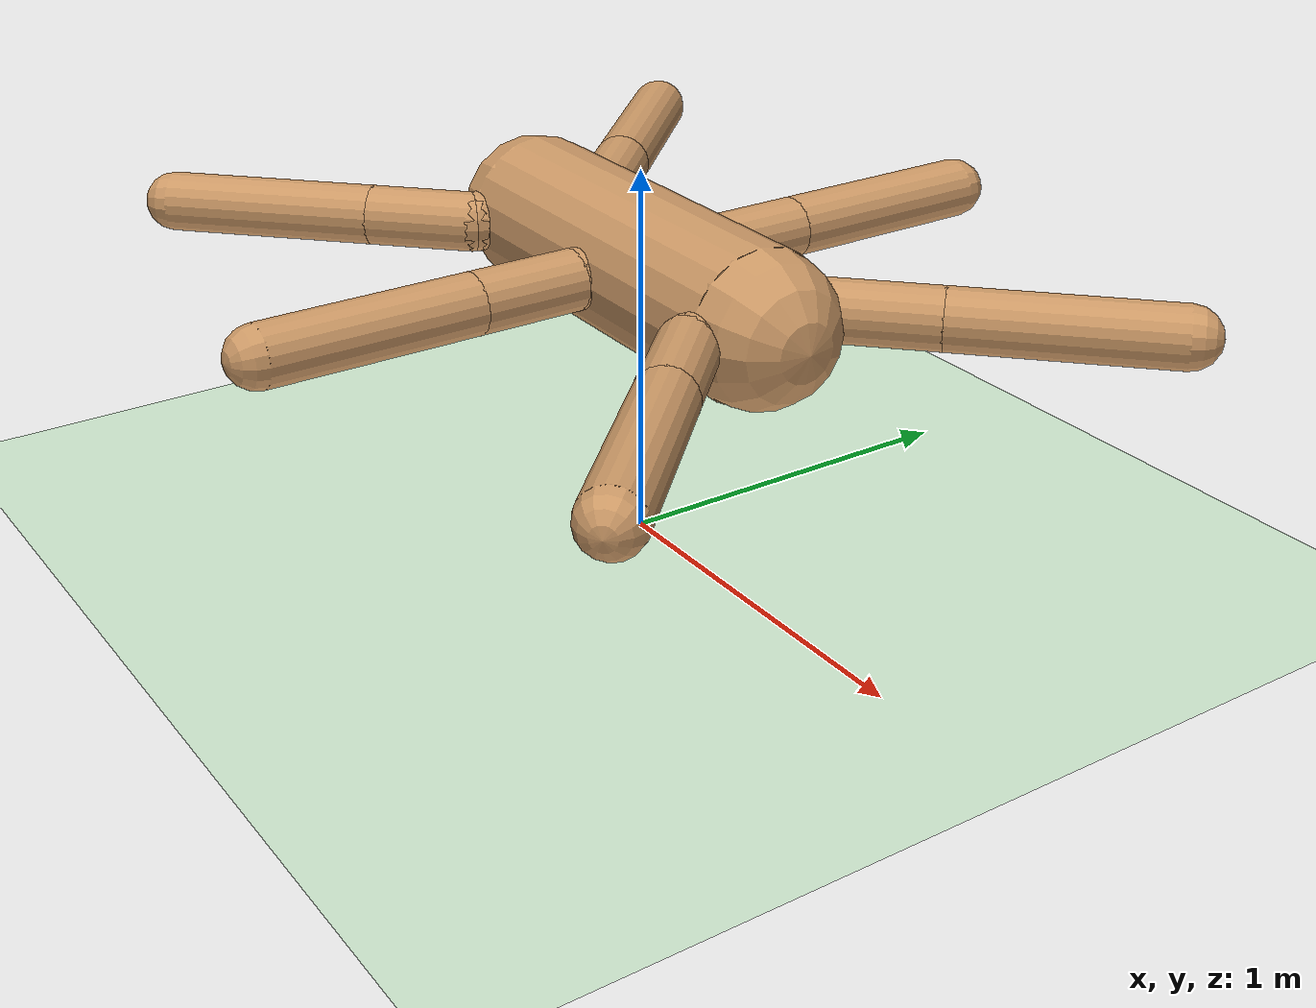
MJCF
<mujoco model="ant">
  <compiler angle="degree" coordinate="local" inertiafromgeom="true" />
  <option integrator="RK4" timestep="0.01" />
  <custom>
    <numeric data="0.0 0.0 0.55 1.0 0.0 0.0 0.0 0.0 1.0 0.0 -1.0 0.0 -1.0 0.0 1.0 1.0 0.0 0.0 0.0 0.0 1.0" name="init_qpos" />
  </custom>
  <default>
    <joint armature="1" damping="1" limited="true" />
    <geom conaffinity="0" condim="3" density="10.0" friction="1 0.5 0.5" margin="0.01" rgba="0.8 0.6 0.4 1" />
  </default>
  <asset>
    <texture builtin="gradient" height="100" rgb1="1 1 1" rgb2="0 0 0" type="skybox" width="100" />
    <texture builtin="flat" height="1278" mark="cross" markrgb="1 1 1" name="texgeom" random="0.01" rgb1="0.8 0.6 0.4" rgb2="0.8 0.6 0.4" type="cube" width="127" />
    <texture builtin="checker" height="100" name="texplane" rgb1="0 0 0" rgb2="0.8 0.8 0.8" type="2d" width="100" />
    <material name="MatPlane" reflectance="0.5" shininess="1" specular="1" texrepeat="60 60" texture="texplane" />
    <material name="geom" texture="texgeom" texuniform="true" />
  </asset>
  <worldbody>
    <light cutoff="100" diffuse="1 1 1" dir="-0 0 -1.3" directional="true" exponent="1" pos="0 0 1.3" specular=".1 .1 .1" />
    <geom conaffinity="1" condim="3" material="MatPlane" name="floor" pos="0 0 0" rgba="0.8 0.9 0.8 1" size="40 40 40" type="plane" />
    <body name="torso" pos="0 0 0.75">
      <camera mode="trackcom" name="track" pos="0 -3 0.3" xyaxes="1 0 0 0 0 1" />
      <geom fromto="0.5 0.0 0.0 -0.5 0.0 0.0" name="torso_geom" size="0.2" type="capsule" />
      <joint armature="0" damping="0" limited="false" margin="0.01" name="root" pos="0 0 0" type="free" />
      <body name="front_left_leg" pos="0 0 0">
        <geom fromto="0.5 0.0 0.0 0.5 0.2 0.0" name="aux_1_geom" size="0.08" type="capsule" />
        <body name="aux_1" pos="0.5 0.2 0">
          <joint axis="0 0 1" name="hip_1" pos="0.0 0.0 0.0" range="-30 30" type="hinge" />
          <geom fromto="0.0 0.0 0.0 0.2 0.2 0.0" name="left_leg_geom" size="0.08" type="capsule" />
          <body pos="0.2 0.2 0.0">
            <joint axis="-1 1 0" name="ankle_1" pos="0.0 0.0 0.0" range="30 70" type="hinge" />
            <geom fromto="0.0 0.0 0.0 0.4 0.4 0.0" name="left_ankle_geom" size="0.08" type="capsule" />
          </body>
        </body>
      </body>
      <body name="front_right_leg" pos="0 0 0">
        <geom fromto="-0.5 0.0 0.0 -0.5 0.2 0.0" name="aux_2_geom" size="0.08" type="capsule" />
        <body name="aux_2" pos="-0.5 0.2 0">
          <joint axis="0 0 1" name="hip_2" pos="0.0 0.0 0.0" range="-30 30" type="hinge" />
          <geom fromto="0.0 0.0 0.0 -0.2 0.2 0.0" name="right_leg_geom" size="0.08" type="capsule" />
          <body pos="-0.2 0.2 0.0">
            <joint axis="1 1 0" name="ankle_2" pos="0.0 0.0 0.0" range="-70 -30" type="hinge" />
            <geom fromto="0.0 0.0 0.0 -0.4 0.4 0.0" name="right_ankle_geom" size="0.08" type="capsule" />
          </body>
        </body>
      </body>
      <body name="back_leg" pos="0 0 0">
        <geom fromto="-0.5 0.0 0.0 -0.5 -0.2 0.0" name="aux_3_geom" size="0.08" type="capsule" />
        <body name="aux_3" pos="-0.5 -0.2 0">
          <joint axis="0 0 1" name="hip_3" pos="0.0 0.0 0.0" range="-30 30" type="hinge" />
          <geom fromto="0.0 0.0 0.0 -0.2 -0.2 0.0" name="back_leg_geom" size="0.08" type="capsule" />
          <body pos="-0.2 -0.2 0.0">
            <joint axis="-1 1 0" name="ankle_3" pos="0.0 0.0 0.0" range="-70 -30" type="hinge" />
            <geom fromto="0.0 0.0 0.0 -0.4 -0.4 0.0" name="third_ankle_geom" size="0.08" type="capsule" />
          </body>
        </body>
      </body>
      <body name="right_back_leg" pos="0 0 0">
        <geom fromto="0.5 0.0 0.0 0.5 -0.2 0.0" name="aux_4_geom" size="0.08" type="capsule" />
        <body name="aux_4" pos="0.5 -0.2 0">
          <joint axis="0 0 1" name="hip_4" pos="0.0 0.0 0.0" range="-30 30" type="hinge" />
          <geom fromto="0.0 0.0 0.0 0.2 -0.2 0.0" name="rightback_leg_geom" size="0.08" type="capsule" />
          <body pos="0.2 -0.2 0.0">
            <joint axis="1 1 0" name="ankle_4" pos="0.0 0.0 0.0" range="30 70" type="hinge" />
            <geom fromto="0.0 0.0 0.0 0.4 -0.4 0.0" name="fourth_ankle_geom" size="0.08" type="capsule" />
          </body>
        </body>
      </body>
      <body name="center_left_leg" pos="0 0 0">
        <geom fromto="0.0 0.0 0.0 0.0 0.2 0.0" name="aux_5_geom" size="0.08" type="capsule" />
        <body name="aux_5" pos="0.0 0.2 0">
          <joint axis="0 0 1" name="hip_5" pos="0.0 0.0 0.0" range="-30 30" type="hinge" />
          <geom fromto="0.0 0.0 0.0 0.0 0.282842712 0.0" name="centerleft_leg_geom" size="0.08" type="capsule" />
          <body pos="0.0 0.282842712 0.0">
            <joint axis="1 0 0" name="ankle_5" pos="0.0 0.0 0.0" range="-70 -30" type="hinge" />
            <geom fromto="0.0 0.0 0.0 0.0 0.565685425 0.0" name="centerleft_ankle_geom" size="0.08" type="capsule" />
          </body>
        </body>
      </body>
      <body name="center_right_leg" pos="0 0 0">
        <geom fromto="0.0 0.0 0.0 0.0 -0.2 0.0" name="aux_6_geom" size="0.08" type="capsule" />
        <body name="aux_6" pos="0.0 -0.2 0">
          <joint axis="0 0 1" name="hip_6" pos="0.0 0.0 0.0" range="-30 30" type="hinge" />
          <geom fromto="0.0 0.0 0.0 0.0 -0.282842712 0.0" name="centerright_leg_geom" size="0.08" type="capsule" />
          <body pos="0.0 -0.282842712 0.0">
            <joint axis="-1 0 0" name="ankle_6" pos="0.0 0.0 0.0" range="-70 -30" type="hinge" />
            <geom fromto="0.0 0.0 0.0 0.0 -0.565685425 0.0" name="centerright_ankle_geom" size="0.08" type="capsule" />
          </body>
        </body>
      </body>
    </body>
  </worldbody>
  <actuator>
    <motor ctrllimited="true" ctrlrange="-1.0 1.0" gear="150" joint="hip_1" />
    <motor ctrllimited="true" ctrlrange="-1.0 1.0" gear="150" joint="ankle_1" />
    <motor ctrllimited="true" ctrlrange="-1.0 1.0" gear="150" joint="hip_2" />
    <motor ctrllimited="true" ctrlrange="-1.0 1.0" gear="150" joint="ankle_2" />
    <motor ctrllimited="true" ctrlrange="-1.0 1.0" gear="150" joint="hip_3" />
    <motor ctrllimited="true" ctrlrange="-1.0 1.0" gear="150" joint="ankle_3" />
    <motor ctrllimited="true" ctrlrange="-1.0 1.0" gear="150" joint="hip_4" />
    <motor ctrllimited="true" ctrlrange="-1.0 1.0" gear="150" joint="ankle_4" />
    <motor ctrllimited="true" ctrlrange="-1.0 1.0" gear="150" joint="hip_5" />
    <motor ctrllimited="true" ctrlrange="-1.0 1.0" gear="150" joint="ankle_5" />
    <motor ctrllimited="true" ctrlrange="-1.0 1.0" gear="150" joint="hip_6" />
    <motor ctrllimited="true" ctrlrange="-1.0 1.0" gear="150" joint="ankle_6" />
  </actuator>
</mujoco>
